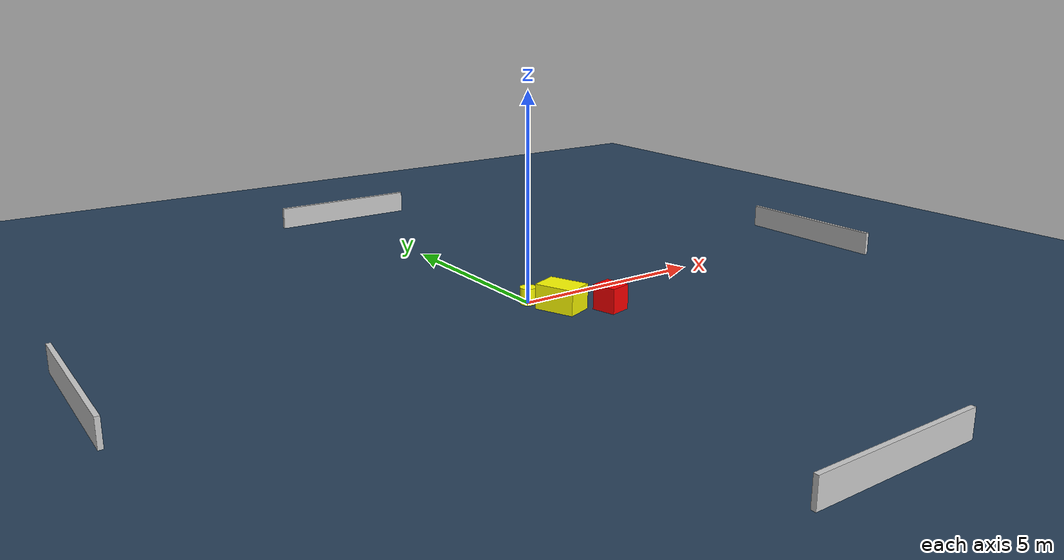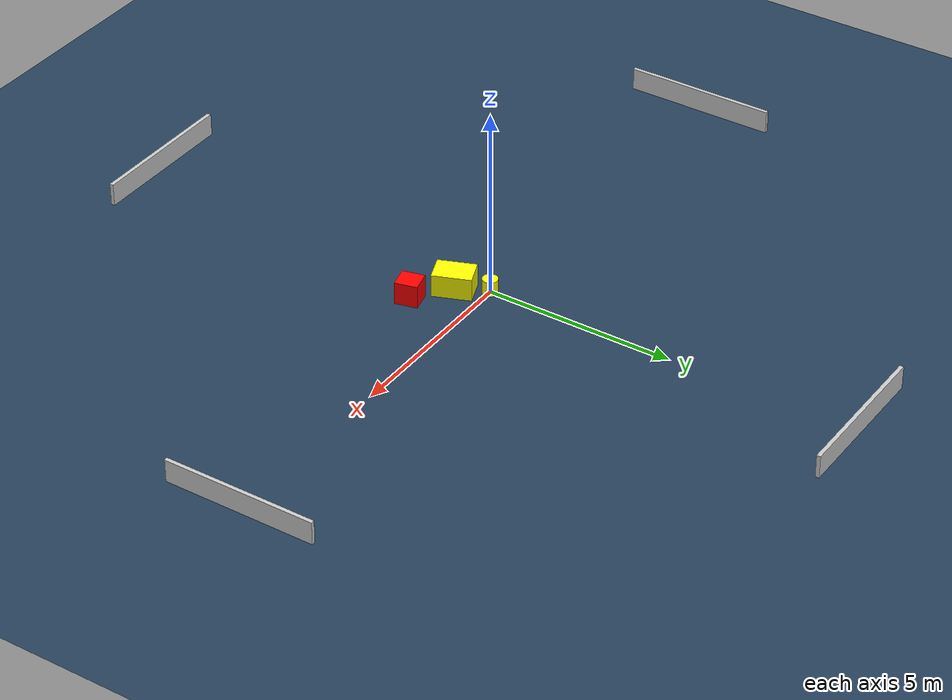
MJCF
<?xml version="1.0" ?>
<mujoco model="generated_environment">
  <option timestep="0.01" integrator="RK4" cone="elliptic"/>
  <default>
    <geom density="1"/>
  </default>
  <asset>
    <texture builtin="gradient" height="3072" name="skybox" rgb1="0.3 0.5 0.7" rgb2="0 0 0" type="skybox" width="512"/>
    <texture builtin="checker" height="300" name="groundplane" rgb1="0.2 0.3 0.4" rgb2="0.1 0.2 0.3" type="2d" width="300"/>
    <material name="groundplane" reflectance="0.2" texrepeat="5 5" texture="groundplane"/>
  </asset>
  <worldbody>
    <light dir="0 0 -1" directional="true" pos="0 0 1.5"/>
    <geom condim="3" friction="0.5 0.005 0.001" material="groundplane" name="floor" pos="0 0 0" size="0 0 0.05" type="plane"/>
    <body name="walls">
      <geom name="wall_1" condim="4" pos="-10.0 0.0 0.3" rgba="0.800000011920929 0.800000011920929 0.800000011920929 1.0" size="0.05 2.0 0.3" type="box"/>
      <geom name="wall_2" condim="4" pos="10.0 0.0 0.3" rgba="0.800000011920929 0.800000011920929 0.800000011920929 1.0" size="0.05 2.0 0.3" type="box"/>
      <geom name="wall_3" condim="4" pos="0.0 -10.0 0.3" rgba="0.800000011920929 0.800000011920929 0.800000011920929 1.0" size="2.0 0.05 0.3" type="box"/>
      <geom name="wall_4" condim="4" pos="0.0 10.0 0.3" rgba="0.800000011920929 0.800000011920929 0.800000011920929 1.0" size="2.0 0.05 0.3" type="box"/>
    </body>
    <body name="robot">
      <joint name="joint_x" type="slide" pos="0 0 0" axis="1 0 0"/>
      <joint name="joint_y" type="slide" pos="0 0 0" axis="0 1 0"/>
      <geom name="robot" type="cylinder" pos="0.0 0.0 0.2" size="0.2 0.2 0.0" mass="5.0" friction="1.0 0.005 0.0001" condim="4" rgba="1.0 1.0 0.0 1.0"/>
    </body>
    <body name="obstacle_1_movable">
      <geom name="obstacle_1_movable" condim="4" pos="0.4096415011963218 -0.7604107104224326 0.3" euler="0 0 111.4011076529516" friction="0.0 0.005 0.001" rgba="1.0 1.0 0.0 1.0" size="0.4986908087913258 0.3484258511516555 0.3" type="box" mass="0.1"/>
      <joint type="free"/>
    </body>
    <body name="obstacle_2_static">
      <geom name="obstacle_2_static" condim="4" pos="1.3142319289624718 -1.438880619147194 0.3" euler="0 0 103.6180200161848" friction="0.0 0.005 0.001" rgba="1.0 0.0 0.0 1.0" size="0.29459935601574017 0.27421026342739185 0.3" type="box"/>
    </body>
  </worldbody>
  <actuator>
    <motor name="actuator_x" joint="joint_x" gear="1" ctrlrange="-1 1"/>
    <motor name="actuator_y" joint="joint_y" gear="1" ctrlrange="-1 1"/>
  </actuator>
</mujoco>
